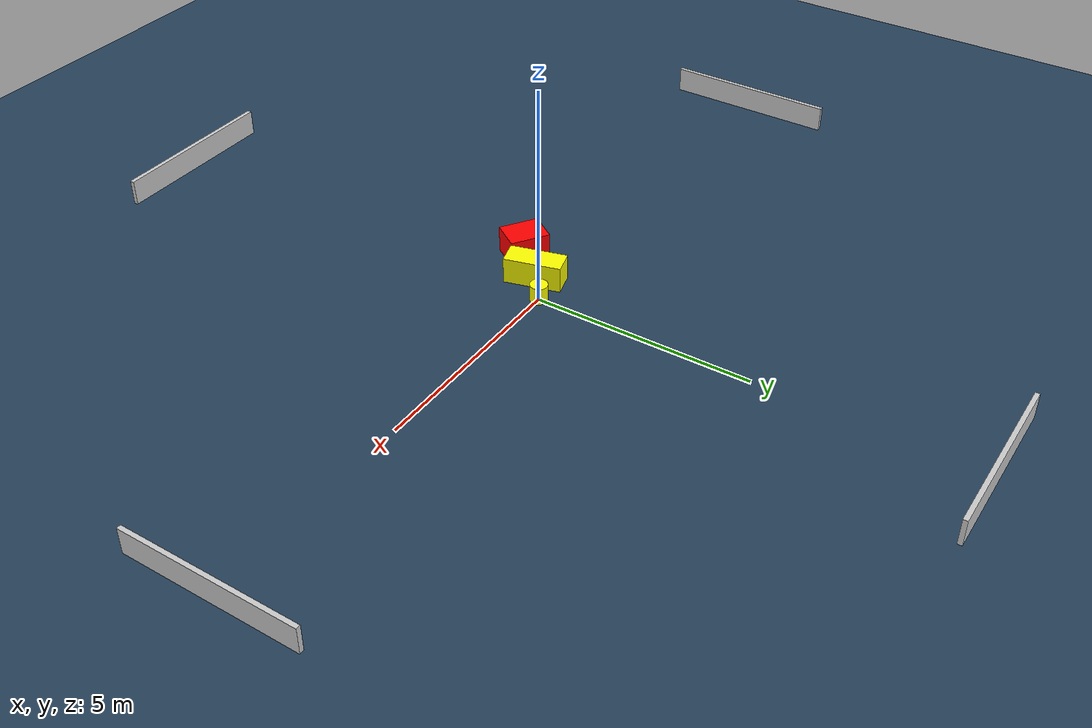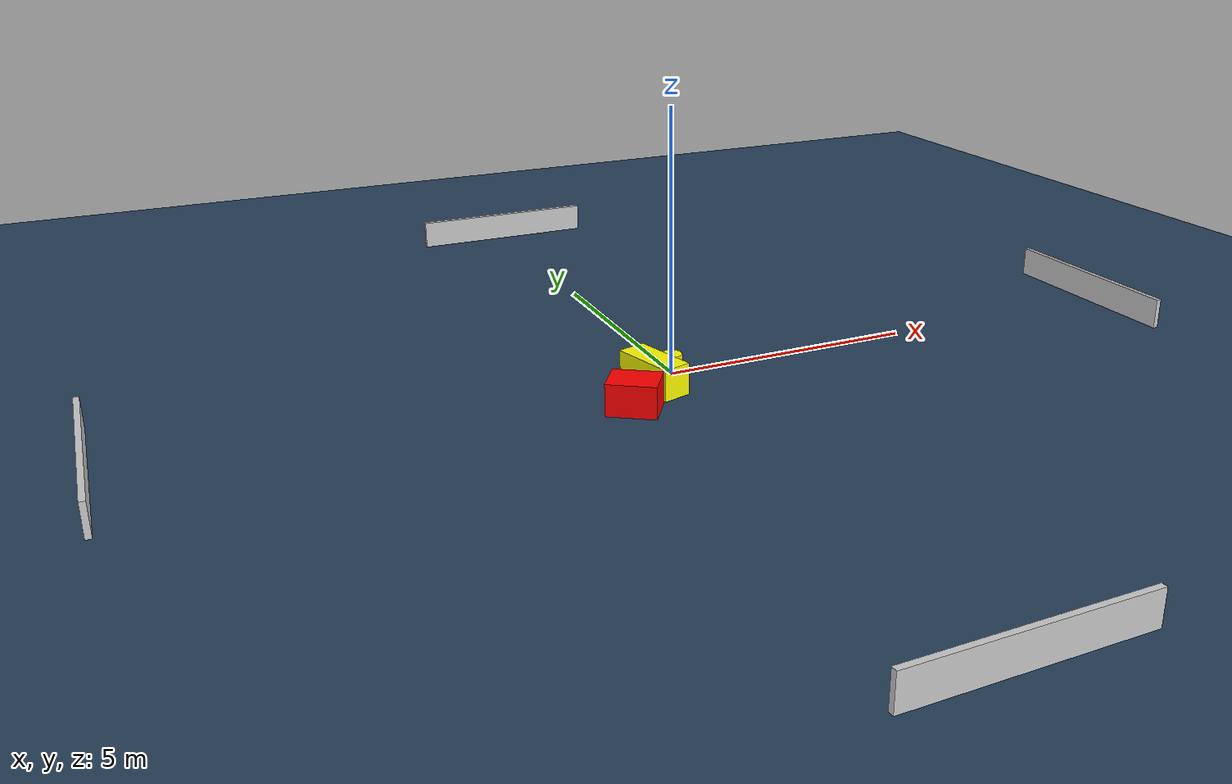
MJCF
<?xml version="1.0" ?>
<mujoco model="generated_environment">
  <option timestep="0.01" integrator="RK4" cone="elliptic"/>
  <default>
    <geom density="1"/>
  </default>
  <asset>
    <texture builtin="gradient" height="3072" name="skybox" rgb1="0.3 0.5 0.7" rgb2="0 0 0" type="skybox" width="512"/>
    <texture builtin="checker" height="300" name="groundplane" rgb1="0.2 0.3 0.4" rgb2="0.1 0.2 0.3" type="2d" width="300"/>
    <material name="groundplane" reflectance="0.2" texrepeat="5 5" texture="groundplane"/>
  </asset>
  <worldbody>
    <light dir="0 0 -1" directional="true" pos="0 0 1.5"/>
    <geom condim="3" friction="0.5 0.005 0.001" material="groundplane" name="floor" pos="0 0 0" size="0 0 0.05" type="plane"/>
    <body name="walls">
      <geom name="wall_1" condim="4" pos="-10.0 0.0 0.3" rgba="0.800000011920929 0.800000011920929 0.800000011920929 1.0" size="0.05 2.0 0.3" type="box"/>
      <geom name="wall_2" condim="4" pos="10.0 0.0 0.3" rgba="0.800000011920929 0.800000011920929 0.800000011920929 1.0" size="0.05 2.0 0.3" type="box"/>
      <geom name="wall_3" condim="4" pos="0.0 -10.0 0.3" rgba="0.800000011920929 0.800000011920929 0.800000011920929 1.0" size="2.0 0.05 0.3" type="box"/>
      <geom name="wall_4" condim="4" pos="0.0 10.0 0.3" rgba="0.800000011920929 0.800000011920929 0.800000011920929 1.0" size="2.0 0.05 0.3" type="box"/>
    </body>
    <body name="robot">
      <joint name="joint_x" type="slide" pos="0 0 0" axis="1 0 0"/>
      <joint name="joint_y" type="slide" pos="0 0 0" axis="0 1 0"/>
      <geom name="robot" type="cylinder" pos="0.0 0.0 0.2" size="0.2 0.2 0.0" mass="5.0" friction="1.0 0.005 0.0001" condim="4" rgba="1.0 1.0 0.0 1.0"/>
    </body>
    <body name="obstacle_1_movable">
      <geom name="obstacle_1_movable" condim="4" pos="-0.5592919337536796 -0.45269469784215965 0.3" euler="0 0 105.47515232134967" friction="0.0 0.005 0.001" rgba="1.0 1.0 0.0 1.0" size="0.6443829082096149 0.27529808276048423 0.3" type="box" mass="0.1"/>
      <joint type="free"/>
    </body>
    <body name="obstacle_2_static">
      <geom name="obstacle_2_static" condim="4" pos="-1.2760825743630968 -1.2145894772360728 0.3" euler="0 0 56.14347742655115" friction="0.0 0.005 0.001" rgba="1.0 0.0 0.0 1.0" size="0.355520728332116 0.45665631287341896 0.3" type="box"/>
    </body>
  </worldbody>
  <actuator>
    <motor name="actuator_x" joint="joint_x" gear="1" ctrlrange="-1 1"/>
    <motor name="actuator_y" joint="joint_y" gear="1" ctrlrange="-1 1"/>
  </actuator>
</mujoco>
